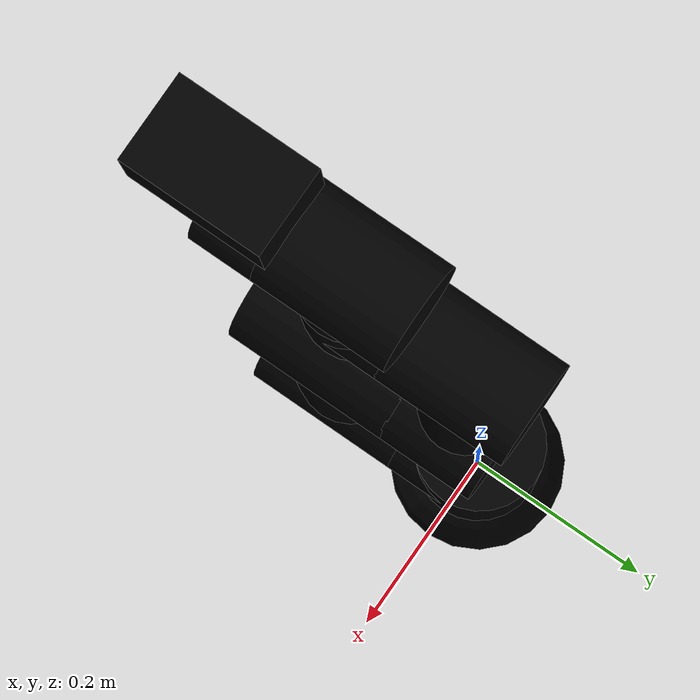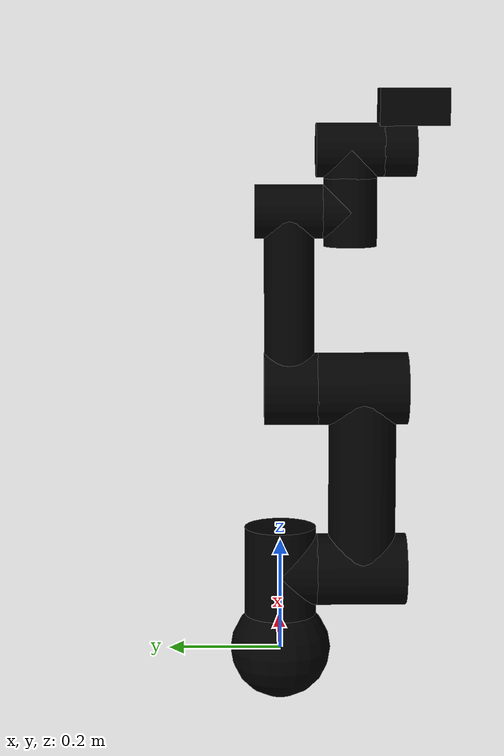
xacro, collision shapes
<?xml version="1.0"?>
<robot xmlns:xacro="http://wiki.ros.org/xacro" name="tm5-700">

  <xacro:arg name="ns" default="" />
  <xacro:arg name="prefix" default="" />

  <xacro:arg name="gripper" default="none" />

  <xacro:arg name="color" default="none" />

  <xacro:arg name="trans_hw_iface" default="hardware_interface/PositionJointInterface" />

  <xacro:include filename="$(find tmr_description)/xacro/macro.gazebo.xacro" />
  <xacro:include filename="$(find tmr_description)/xacro/macro.transmission.xacro" />
  <xacro:include filename="$(find tmr_description)/xacro/macro.materials.xacro" />

  <!-- tm5-700 -->
  <xacro:include filename="$(find tmr_description)/xacro/macro.tm5-700.urdf.xacro" />

  <xacro:tmr_gazebo ns="$(arg ns)" prefix="$(arg prefix)" />
  <xacro:tmr_transmission prefix="$(arg prefix)" hw_iface="$(arg trans_hw_iface)" />
  <xacro:tmr_materials/>

  <!-- Arm -->
  <xacro:property name="color" value="$(arg color)"/>
  <xacro:if value="${color == 'none'}">
    <xacro:tm5-700 ns="$(arg ns)" prefix="$(arg prefix)" />
  </xacro:if>
  <!-- Arm.color.stl -->
  <xacro:unless value="${color == 'none'}">
    <xacro:tm5-700 ns="$(arg ns)" prefix="$(arg prefix)" color="${color}" format="stl" />
  </xacro:unless>

  <!-- Arm + Gripper -->
  <xacro:property name="gripper" value="$(arg gripper)"/>
  <xacro:if value="${gripper == 'robotiq_2f'}">
    <xacro:include filename="$(find tmr_description)/xacro/gripper/robotiq_2f.urdf.xacro" />
    <xacro:robotiq_2f prefix="$(arg prefix)"/>
  </xacro:if>
  <xacro:if value="${gripper == 'rg2'}">
    <xacro:include filename="$(find tmr_description)/xacro/gripper/on_robot_rg2.urdf.xacro" />
    <xacro:on_robot_rg2 prefix="$(arg prefix)"/>
  </xacro:if>

</robot>

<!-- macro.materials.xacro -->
<robot xmlns:xacro="http://www.ros.org/wiki/xacro">
  <xacro:macro name="tmr_materials">
    <material name="none">
      <color rgba="0.0 0.0 0.0 1.0" />
    </material>
    <material name="grey">
      <color rgba="0.5 0.5 0.5 1.0" />
    </material>
    <material name="white">
      <color rgba="0.95 0.95 0.95 1.0" />
    </material>
    <material name="red">
      <color rgba="0.95 0.0 0.0 1.0" />
    </material>
    <material name="orange">
      <color rgba="1.0 0.5 0.0 1.0" />
    </material>
    <material name="yellow">
      <color rgba="1.0 1.0 0.0 1.0" />
    </material>
    <material name="green">
      <color rgba="0.0 1.0 0.0 1.0" />
    </material>
    <material name="blue">
      <color rgba="0.0 0.0 1.0 1.0" />
    </material>
    <material name="indigo">
      <color rgba="0.3 0.3 0.6 1.0" />
    </material>
    <material name="violet">
      <color rgba="0.6 0.0 1.0 1.0" />
    </material>
    <material name="black">
      <color rgba="0.0 0.0 0.0 1.0" />
    </material>
  </xacro:macro>
</robot>

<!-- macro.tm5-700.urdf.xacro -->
<robot xmlns:xacro="http://wiki.ros.org/xacro">

  <xacro:include filename="$(find tmr_description)/xacro/macro.inertial.xacro" />

  <xacro:macro name="tm5-700" params="ns prefix
    color:=none format:=obj">
    <xacro:property name="mass_0" value="1.0" />
    <xacro:property name="mass_1" value="4.5" />
    <xacro:property name="mass_2" value="11.0" />
    <xacro:property name="mass_3" value="2.5" />
    <xacro:property name="mass_4" value="1.45" />
    <xacro:property name="mass_5" value="1.45" />
    <xacro:property name="mass_6" value="0.4" />

<!--LinkDescription-->
  <link name="${prefix}link_0">
    <visual>
      <geometry>
        <mesh filename="package://tmr_description/meshes/tm5-900/visual/tm5_base.${format}" />
      </geometry>
      <material name="${color}" />
    </visual>
    <collision>
      <geometry>
        <sphere radius="0.09" />
      </geometry>
    </collision>
<!--inertial-->
    <xacro:cylinder_inertial_z radius="0.06" length="0.05" mass="${mass_0}">
      <origin xyz="0 0 0" rpy="0 0 0" />
    </xacro:cylinder_inertial_z>
  </link>

  <joint name="${prefix}joint_1" type="revolute">
    <parent link="${prefix}link_0" />
    <child link="${prefix}link_1" />
    <origin xyz="0 0 0.1452" rpy="0 0 0" />
    <axis xyz="0 0 1" />
<!--limit-->
    <limit lower="${-1.5*pi}" upper="${1.5*pi}" velocity="3.14" effort="320.0" />
  </joint>

  <link name="${prefix}link_1">
    <visual>
      <geometry>
        <mesh filename="package://tmr_description/meshes/tm5-900/visual/tmr_400w_01.${format}" />
      </geometry>
      <material name="${color}" />
    </visual>
    <collision>
      <geometry>
        <cylinder length="0.16" radius="0.064" />
      </geometry>
      <origin xyz="0 0 -0.001" rpy="0 0 0" />
    </collision>
    <collision>
      <geometry>
        <cylinder length="0.066" radius="0.064" />
      </geometry>
      <origin xyz="0 -0.033 0" rpy="${-0.5*pi} 0 0" />
    </collision>
<!--inertial-->
    <xacro:cylinder_inertial_z radius="0.06" length="0.15" mass="${mass_1}">
      <origin xyz="0 0 0" rpy="0 0 0" />
    </xacro:cylinder_inertial_z>
  </link>

  <joint name="${prefix}joint_2" type="revolute">
    <parent link="${prefix}link_1" />
    <child link="${prefix}link_2" />
    <origin xyz="0 0 0" rpy="${-0.5*pi} ${-0.5*pi} 0" />
    <axis xyz="0 0 1" />
<!--limit-->
    <limit lower="${-pi}" upper="${pi}" velocity="3.14" effort="320" />
  </joint>

  <link name="${prefix}link_2">
    <visual>
      <geometry>
        <mesh filename="package://tmr_description/meshes/tm5-700/visual/tm5-700_arm1.${format}" />
      </geometry>
      <material name="${color}" />
    </visual>
    <collision>
      <geometry>
        <cylinder length="0.16" radius="0.064" />
      </geometry>
      <origin xyz="0 0 -0.145" rpy="0 0 0" />
    </collision>
    <collision>
      <geometry>
        <cylinder length="0.329" radius="0.06" />
      </geometry>
      <origin xyz="0.1645 0 -0.146" rpy="0 ${0.5*pi} 0" />
    </collision>
    <collision>
      <geometry>
        <cylinder length="0.16" radius="0.064" />
      </geometry>
      <origin xyz="0.329 0 -0.145" rpy="0 0 0" />
    </collision>
<!--inertial-->
    <xacro:cylinder_inertial_x radius="0.06" length="0.429" mass="${mass_2}">
      <origin xyz="0.1645 0 -0.146" rpy="0 0 0" />
    </xacro:cylinder_inertial_x>
  </link>

  <joint name="${prefix}joint_3" type="revolute">
    <parent link="${prefix}link_2" />
    <child link="${prefix}link_3" />
    <origin xyz="0.329 0 0" rpy="0 0 0" />
    <axis xyz="0 0 1" />
<!--limit-->
    <limit lower="${-pi}" upper="${pi}" velocity="3.14" effort="320" />
  </joint>

  <link name="${prefix}link_3">
    <visual>
      <geometry>
        <mesh filename="package://tmr_description/meshes/tm5-700/visual/tm5-700_arm2.${format}" />
      </geometry>
      <material name="${color}" />
    </visual>
    <collision>
      <geometry>
        <cylinder length="0.095" radius="0.064" />
      </geometry>
      <origin xyz="0 0 -0.0193" rpy="0 0 0" />
    </collision>
    <collision>
      <geometry>
        <cylinder length="0.3115" radius="0.044" />
      </geometry>
      <origin xyz="0.15575 0 -0.0163" rpy="0 ${0.5*pi} 0" />
    </collision>
    <collision>
      <geometry>
        <cylinder length="0.118" radius="0.0465" />
      </geometry>
      <origin xyz="0.3115 0 -0.0153" rpy="0 0 0" />
    </collision>
<!--inertial-->
    <xacro:cylinder_inertial_x radius="0.045" length="0.4115" mass="${mass_3}">
      <origin xyz="0.15575 0 -0.0163" rpy="0 0 0" />
    </xacro:cylinder_inertial_x>
  </link>

  <joint name="${prefix}joint_4" type="revolute">
    <parent link="${prefix}link_3" />
    <child link="${prefix}link_4" />
    <origin xyz="0.3115 0 -0.1223" rpy="0 0 ${0.5*pi}" />
    <axis xyz="0 0 1" />
<!--limit-->
    <limit lower="${-pi}" upper="${pi}" velocity="3.92" effort="80" />
  </joint>

  <link name="${prefix}link_4">
    <visual>
      <geometry>
        <mesh filename="package://tmr_description/meshes/tm5-900/visual/tmr_100w_01.${format}" />
      </geometry>
      <material name="${color}" />
    </visual>
    <collision>
      <geometry>
        <cylinder length="0.049" radius="0.0465" />
      </geometry>
      <origin xyz="0 0 0.0245" rpy="0 0 0" />
    </collision>
    <collision>
      <geometry>
        <cylinder length="0.118" radius="0.0465" />
      </geometry>
      <origin xyz="0 0.001 0" rpy="${0.5*pi} 0 0" />
    </collision>
<!--inertial-->
    <xacro:cylinder_inertial_y radius="0.045" length="0.12" mass="${mass_4}">
      <origin xyz="0 0 0" rpy="0 0 0" />
    </xacro:cylinder_inertial_y>
  </link>

  <joint name="${prefix}joint_5" type="revolute">
    <parent link="${prefix}link_4" />
    <child link="${prefix}link_5" />
    <origin xyz="0 -0.106 0" rpy="${0.5*pi} 0 0" />
    <axis xyz="0 0 1" />
<!--limit-->
    <limit lower="${-pi}" upper="${pi}" velocity="3.92" effort="80" />
  </joint>

  <link name="${prefix}link_5">
    <visual>
      <geometry>
        <mesh filename="package://tmr_description/meshes/tm5-900/visual/tmr_100w_02.${format}" />
      </geometry>
      <material name="${color}" />
    </visual>
    <collision>
      <geometry>
        <cylinder length="0.049" radius="0.0465" />
      </geometry>
      <origin xyz="0 0 -0.0245" rpy="0 0 0" />
    </collision>
    <collision>
      <geometry>
        <cylinder length="0.118" radius="0.0465" />
      </geometry>
      <origin xyz="0 0.001 0" rpy="${0.5*pi} 0 0" />
    </collision>
<!--inertial-->
    <xacro:cylinder_inertial_y radius="0.045" length="0.12" mass="${mass_5}">
      <origin xyz="0 0 0" rpy="0 0 0" />
    </xacro:cylinder_inertial_y>
  </link>

  <joint name="${prefix}joint_6" type="revolute">
    <parent link="${prefix}link_5" />
    <child link="${prefix}link_6" />
    <origin xyz="0 -0.11315 0" rpy="${0.5*pi} 0 0" />
    <axis xyz="0 0 1" />
<!--limit-->
    <limit lower="${-1.5*pi}" upper="${1.5*pi}" velocity="3.92" effort="80" />
  </joint>

  <link name="${prefix}link_6">
    <visual>
      <geometry>
        <mesh filename="package://tmr_description/meshes/tm5-900/visual/tmr_ee.${format}" />
      </geometry>
      <material name="${color}" />
    </visual>
    <collision>
      <geometry>
        <cylinder length="0.0565" radius="0.0465" />
      </geometry>
      <origin xyz="0 0 -0.02825" rpy="0 0 0" />
    </collision>
    <collision>
      <geometry>
        <box size="0.075 0.064 0.12" />
      </geometry>
      <origin xyz="0 0.073 -0.005" rpy="0 0 0" />
    </collision>
<!--inertial-->
    <xacro:cylinder_inertial_z radius="0.045" length="0.06" mass="${mass_6}">
      <origin xyz="0 0 0" rpy="0 0 0" />
    </xacro:cylinder_inertial_z>
  </link>

  <link name="${prefix}base" />
  <joint name="${prefix}base_fixed_joint" type="fixed">
    <parent link="${prefix}base" />
    <child link="${prefix}link_0" />
    <origin xyz="0 0 0" rpy="0 0 0" />
  </joint>

  <link name="${prefix}flange" />
  <joint name="${prefix}flange_fixed_joint" type="fixed">
    <parent link="${prefix}link_6" />
    <child link="${prefix}flange" />
    <origin xyz="0 0 0" rpy="0 0 0" />
  </joint>
<!--LinkDescription-->

  </xacro:macro>

</robot>
